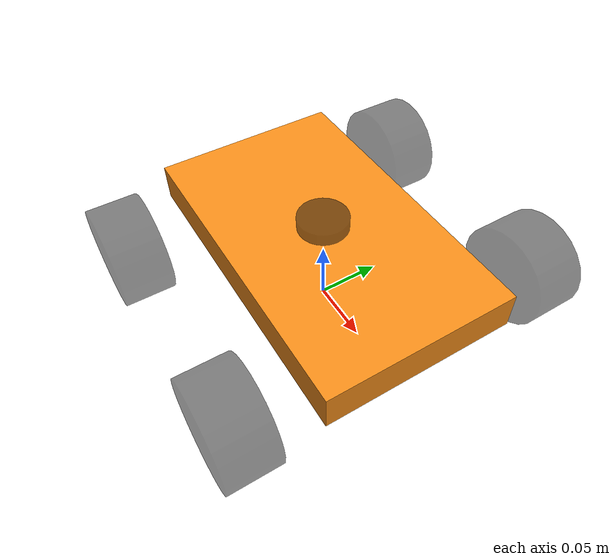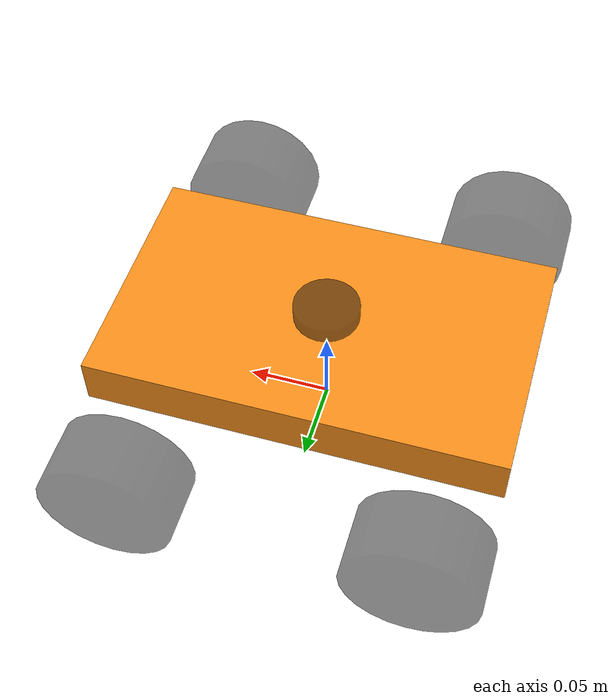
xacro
<?xml version="1.0"?>
<!-- Basic differential drive mobile base -->
<robot xmlns:xacro="http://www.ros.org/wiki/xacro" name="dogbot_drive_robot">
  <xacro:arg name="prefix" default="" />
  <xacro:arg name="use_mock_hardware" default="false" />

  <xacro:include filename="$(find dogbot_description)/dogbot/urdf/dogbot.urdf.xacro" />

  <!-- Import Rviz colors -->
  <xacro:include filename="$(find dogbot_description)/dogbot/urdf/dogbot.materials.xacro" />

  <!-- Import dogbot ros2_control description -->
  <xacro:include filename="$(find dogbot_drive)/ros2_control/dogbot.ros2_control.xacro" />

  <xacro:dogbot prefix="$(arg prefix)" />

  <xacro:dogbot_ros2_control
    name="DogBot" prefix="$(arg prefix)" use_mock_hardware="$(arg use_mock_hardware)"/>

</robot>

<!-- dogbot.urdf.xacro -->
<robot xmlns:xacro="http://www.ros.org/wiki/xacro">
    <xacro:macro name="dogbot" params="prefix">
        <!-- Constants for robot dimensions -->
        <xacro:property name="PI" value="3.1415926535897931" />
        <xacro:property name="base_mass" value="1.5" /> <!-- arbitrary value for base mass -->
        <xacro:property name="base_width" value="0.25" />
        <xacro:property name="base_length" value="0.15" />
        <xacro:property name="base_height" value="0.03" />
        <xacro:property name="base_z_offset" value="0.06" />
        <xacro:property name="wheel_mass" value="0.05" /> <!-- arbitrary value for wheel mass -->
        <xacro:property name="wheel_len" value="0.04" />
        <xacro:property name="wheel_radius" value="0.04" />
        <xacro:property name="wheel_x_alignment" value="0.0875" />
        <xacro:property name="wheel_y_alignment" value="0.125" />
        <xacro:property name="wheel_joint_z_offset" value="0.04" /> <!-- Space btw top of beam and
        each joint -->

        <!-- Base Link -->
        <link name="base_link">
            <collision>
                <origin xyz="0 0 0" rpy="0 0 0" />
                <geometry>
                    <box size="${base_width} ${base_length} ${base_height}" />
                </geometry>
            </collision>

            <visual>
                <origin xyz="0 0 ${base_z_offset}" rpy="0 0 0" />
                <geometry>
                    <box size="${base_width} ${base_length} ${base_height}" />
                </geometry>
                <material name="orange" />
            </visual>
        </link>

        <!-- laser link -->
        <link name="laser_frame">
            <visual>
                <origin xyz="0 0 0" rpy="0 0 0" />
                <geometry>
                    <cylinder length="0.02" radius="0.02" />
                </geometry>
                <material name="black">
                    <color rgba="0.0 0.0 0.0 0.5" />
                </material>
            </visual>
        </link>

        <!-- laser joint -->
        <joint name="laser_joint" type="fixed">
            <parent link="base_link" />
            <child link="laser_frame" />
            <origin xyz="0 0 0.075" />
        </joint>

        <!-- imu link -->
        <link name="imu_link">
            <visual>
                <origin xyz="0 0 0.0" rpy="0 0 0" />
                <geometry>
                    <box size="0.02 0.02 0.02" />
                </geometry>
            </visual>
        </link>

        <!-- imu joint -->
        <joint name="imu_joint" type="fixed">
            <parent link="base_link" />
            <child link="imu_link" />
            <origin xyz="0 0 0.02" />
        </joint>

        <!-- left front wheel joint -->
        <joint name="lf_wheel_joint" type="fixed">
            <parent link="base_link" />
            <child link="lf_wheel" />
            <origin xyz="${wheel_x_alignment} ${wheel_y_alignment} ${wheel_joint_z_offset}"
                rpy="0 0 0" />
            <axis xyz="0 1 0" />
        </joint>

        <!-- left front wheel Link -->
        <link name="lf_wheel">
            <collision>
                <origin xyz="0 0 0" rpy="${PI/2} 0 0" />
                <geometry>
                    <cylinder length="${wheel_len}" radius="${wheel_radius}" />
                </geometry>
            </collision>

            <visual>
                <origin xyz="0 0 0" rpy="${PI/2} 0 0" />
                <geometry>
                    <cylinder length="${wheel_len}" radius="${wheel_radius}" />
                </geometry>
                <material name="black" />
            </visual>
        </link>

        <!-- right front wheel joint -->
        <joint name="rf_wheel_joint" type="continuous">
            <parent link="base_link" />
            <child link="rf_wheel" />
            <origin xyz="${wheel_x_alignment} -${wheel_y_alignment} ${wheel_joint_z_offset}"
                rpy="0 0 0" />
            <axis xyz="0 1 0" />
        </joint>

        <!-- right front wheel Link -->
        <link name="rf_wheel">
            <collision>
                <origin xyz="0 0 0" rpy="${PI/2} 0 0" />
                <geometry>
                    <cylinder length="${wheel_len}" radius="${wheel_radius}" />
                </geometry>
            </collision>

            <visual>
                <origin xyz="0 0 0" rpy="${PI/2} 0 0" />
                <geometry>
                    <cylinder length="${wheel_len}" radius="${wheel_radius}" />
                </geometry>
                <material name="black" />
            </visual>
        </link>

        <!-- left back wheel joint -->
        <joint name="lb_wheel_joint" type="continuous">
            <parent link="base_link" />
            <child link="lb_wheel" />
            <origin xyz="-${wheel_x_alignment} ${wheel_y_alignment} ${wheel_joint_z_offset}"
                rpy="0 0 0" />
            <axis xyz="0 1 0" />
        </joint>

        <!-- left back wheel Link -->
        <link name="lb_wheel">
            <collision>
                <origin xyz="0 0 0" rpy="${PI/2} 0 0" />
                <geometry>
                    <cylinder length="${wheel_len}" radius="${wheel_radius}" />
                </geometry>
            </collision>

            <visual>
                <origin xyz="0 0 0" rpy="${PI/2} 0 0" />
                <geometry>
                    <cylinder length="${wheel_len}" radius="${wheel_radius}" />
                </geometry>
                <material name="black" />
            </visual>
        </link>

        <!-- right back wheel joint -->
        <joint name="rb_wheel_joint" type="continuous">
            <parent link="base_link" />
            <child link="rb_wheel" />
            <origin xyz="-${wheel_x_alignment} -${wheel_y_alignment} ${wheel_joint_z_offset}"
                rpy="0 0 0" />
            <axis xyz="0 1 0" />
        </joint>

        <!-- right back wheel Link -->
        <link name="rb_wheel">
            <collision>
                <origin xyz="0 0 0" rpy="${PI/2} 0 0" />
                <geometry>
                    <cylinder length="${wheel_len}" radius="${wheel_radius}" />
                </geometry>
            </collision>

            <visual>
                <origin xyz="0 0 0" rpy="${PI/2} 0 0" />
                <geometry>
                    <cylinder length="${wheel_len}" radius="${wheel_radius}" />
                </geometry>
                <material name="black" />
            </visual>
        </link>

        <!-- servo forearm joint -->
        <joint name="servo_forearm_joint" type="continuous">
            <parent link="base_link" />
            <child link="servo_forearm" />
            <origin xyz="0 0 0" rpy="0 0 0" />
            <axis xyz="0 1 0" />
        </joint>

        <!-- servo forearm Link -->
        <link name="servo_forearm">
            <visual>
                <origin xyz="0 0 0" rpy="0 0 0" />
                <geometry>
                    <box size="0.05 0.05 0.05" />
                </geometry>
                <material name="green" />
            </visual>

        </link>

        <!-- servo gripper joint -->
        <joint name="servo_gripper_joint" type="continuous">
            <parent link="servo_forearm" />
            <child link="servo_gripper" />
            <origin xyz="0 0 0" rpy="0 0 0" />
            <axis xyz="0 1 0" />
        </joint>

        <!-- servo gripper Link -->
        <link name="servo_gripper">
            <visual>
                <origin xyz="0 0 0" rpy="0 0 0" />
                <geometry>
                    <box size="0.05 0.05 0.05" />
                </geometry>
                <material name="green" />
            </visual>
        </link>

    </xacro:macro>
</robot>
